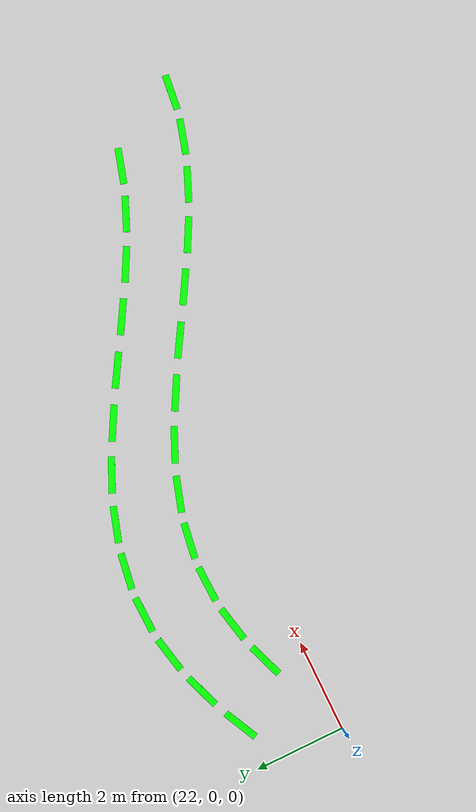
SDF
<sdf version="1.6">
 <world name="curved_lane_world">
  <include><uri>model://sun</uri></include>
  <include><uri>model://ground_plane</uri></include>
  <model name="lane_seg_23_right">
   <static>true</static>
   <pose>23.00 1.91 0 0 0 0.46</pose>
   <link name="lane_link_23_right">
    <visual name="segment">
     <pose>0 0 0.02 0 0 0</pose>
     <geometry><box><size>0.8 0.15 0.01</size></box></geometry>
     <material><ambient>0 1 0 1</ambient><diffuse>0 1 0 1</diffuse></material>
    </visual>
   </link>
  </model>
  <model name="lane_seg_24_left">
   <static>true</static>
   <pose>24.00 0.84 0 0 0 0.35</pose>
   <link name="lane_link_24_left">
    <visual name="segment">
     <pose>0 0 0.02 0 0 0</pose>
     <geometry><box><size>0.8 0.15 0.01</size></box></geometry>
     <material><ambient>0 1 0 1</ambient><diffuse>0 1 0 1</diffuse></material>
    </visual>
   </link>
  </model>
  <model name="lane_seg_24_right">
   <static>true</static>
   <pose>24.00 2.34 0 0 0 0.35</pose>
   <link name="lane_link_24_right">
    <visual name="segment">
     <pose>0 0 0.02 0 0 0</pose>
     <geometry><box><size>0.8 0.15 0.01</size></box></geometry>
     <material><ambient>0 1 0 1</ambient><diffuse>0 1 0 1</diffuse></material>
    </visual>
   </link>
  </model>
  <model name="lane_seg_25_left">
   <static>true</static>
   <pose>25.00 1.13 0 0 0 0.21</pose>
   <link name="lane_link_25_left">
    <visual name="segment">
     <pose>0 0 0.02 0 0 0</pose>
     <geometry><box><size>0.8 0.15 0.01</size></box></geometry>
     <material><ambient>0 1 0 1</ambient><diffuse>0 1 0 1</diffuse></material>
    </visual>
   </link>
  </model>
  <model name="lane_seg_25_right">
   <static>true</static>
   <pose>25.00 2.63 0 0 0 0.21</pose>
   <link name="lane_link_25_right">
    <visual name="segment">
     <pose>0 0 0.02 0 0 0</pose>
     <geometry><box><size>0.8 0.15 0.01</size></box></geometry>
     <material><ambient>0 1 0 1</ambient><diffuse>0 1 0 1</diffuse></material>
    </visual>
   </link>
  </model>
  <model name="lane_seg_26_left">
   <static>true</static>
   <pose>26.00 1.25 0 0 0 0.03</pose>
   <link name="lane_link_26_left">
    <visual name="segment">
     <pose>0 0 0.02 0 0 0</pose>
     <geometry><box><size>0.8 0.15 0.01</size></box></geometry>
     <material><ambient>0 1 0 1</ambient><diffuse>0 1 0 1</diffuse></material>
    </visual>
   </link>
  </model>
  <model name="lane_seg_26_right">
   <static>true</static>
   <pose>26.00 2.75 0 0 0 0.03</pose>
   <link name="lane_link_26_right">
    <visual name="segment">
     <pose>0 0 0.02 0 0 0</pose>
     <geometry><box><size>0.8 0.15 0.01</size></box></geometry>
     <material><ambient>0 1 0 1</ambient><diffuse>0 1 0 1</diffuse></material>
    </visual>
   </link>
  </model>
  <model name="lane_seg_27_left">
   <static>true</static>
   <pose>27.00 1.19 0 0 0 -0.15</pose>
   <link name="lane_link_27_left">
    <visual name="segment">
     <pose>0 0 0.02 0 0 0</pose>
     <geometry><box><size>0.8 0.15 0.01</size></box></geometry>
     <material><ambient>0 1 0 1</ambient><diffuse>0 1 0 1</diffuse></material>
    </visual>
   </link>
  </model>
  <model name="lane_seg_27_right">
   <static>true</static>
   <pose>27.00 2.69 0 0 0 -0.15</pose>
   <link name="lane_link_27_right">
    <visual name="segment">
     <pose>0 0 0.02 0 0 0</pose>
     <geometry><box><size>0.8 0.15 0.01</size></box></geometry>
     <material><ambient>0 1 0 1</ambient><diffuse>0 1 0 1</diffuse></material>
    </visual>
   </link>
  </model>
  <model name="lane_seg_28_left">
   <static>true</static>
   <pose>28.00 0.96 0 0 0 -0.30</pose>
   <link name="lane_link_28_left">
    <visual name="segment">
     <pose>0 0 0.02 0 0 0</pose>
     <geometry><box><size>0.8 0.15 0.01</size></box></geometry>
     <material><ambient>0 1 0 1</ambient><diffuse>0 1 0 1</diffuse></material>
    </visual>
   </link>
  </model>
  <model name="lane_seg_28_right">
   <static>true</static>
   <pose>28.00 2.46 0 0 0 -0.30</pose>
   <link name="lane_link_28_right">
    <visual name="segment">
     <pose>0 0 0.02 0 0 0</pose>
     <geometry><box><size>0.8 0.15 0.01</size></box></geometry>
     <material><ambient>0 1 0 1</ambient><diffuse>0 1 0 1</diffuse></material>
    </visual>
   </link>
  </model>
  <model name="lane_seg_29_left">
   <static>true</static>
   <pose>29.00 0.58 0 0 0 -0.42</pose>
   <link name="lane_link_29_left">
    <visual name="segment">
     <pose>0 0 0.02 0 0 0</pose>
     <geometry><box><size>0.8 0.15 0.01</size></box></geometry>
     <material><ambient>0 1 0 1</ambient><diffuse>0 1 0 1</diffuse></material>
    </visual>
   </link>
  </model>
  <model name="lane_seg_29_right">
   <static>true</static>
   <pose>29.00 2.08 0 0 0 -0.42</pose>
   <link name="lane_link_29_right">
    <visual name="segment">
     <pose>0 0 0.02 0 0 0</pose>
     <geometry><box><size>0.8 0.15 0.01</size></box></geometry>
     <material><ambient>0 1 0 1</ambient><diffuse>0 1 0 1</diffuse></material>
    </visual>
   </link>
  </model>
  <model name="lane_seg_30_left">
   <static>true</static>
   <pose>30.00 0.07 0 0 0 -0.50</pose>
   <link name="lane_link_30_left">
    <visual name="segment">
     <pose>0 0 0.02 0 0 0</pose>
     <geometry><box><size>0.8 0.15 0.01</size></box></geometry>
     <material><ambient>0 1 0 1</ambient><diffuse>0 1 0 1</diffuse></material>
    </visual>
   </link>
  </model>
  <model name="lane_seg_30_right">
   <static>true</static>
   <pose>30.00 1.57 0 0 0 -0.50</pose>
   <link name="lane_link_30_right">
    <visual name="segment">
     <pose>0 0 0.02 0 0 0</pose>
     <geometry><box><size>0.8 0.15 0.01</size></box></geometry>
     <material><ambient>0 1 0 1</ambient><diffuse>0 1 0 1</diffuse></material>
    </visual>
   </link>
  </model>
  <model name="lane_seg_31_left">
   <static>true</static>
   <pose>31.00 -0.50 0 0 0 -0.54</pose>
   <link name="lane_link_31_left">
    <visual name="segment">
     <pose>0 0 0.02 0 0 0</pose>
     <geometry><box><size>0.8 0.15 0.01</size></box></geometry>
     <material><ambient>0 1 0 1</ambient><diffuse>0 1 0 1</diffuse></material>
    </visual>
   </link>
  </model>
  <model name="lane_seg_31_right">
   <static>true</static>
   <pose>31.00 1.00 0 0 0 -0.54</pose>
   <link name="lane_link_31_right">
    <visual name="segment">
     <pose>0 0 0.02 0 0 0</pose>
     <geometry><box><size>0.8 0.15 0.01</size></box></geometry>
     <material><ambient>0 1 0 1</ambient><diffuse>0 1 0 1</diffuse></material>
    </visual>
   </link>
  </model>
  <model name="lane_seg_32_left">
   <static>true</static>
   <pose>32.00 -1.10 0 0 0 -0.53</pose>
   <link name="lane_link_32_left">
    <visual name="segment">
     <pose>0 0 0.02 0 0 0</pose>
     <geometry><box><size>0.8 0.15 0.01</size></box></geometry>
     <material><ambient>0 1 0 1</ambient><diffuse>0 1 0 1</diffuse></material>
    </visual>
   </link>
  </model>
  <model name="lane_seg_32_right">
   <static>true</static>
   <pose>32.00 0.40 0 0 0 -0.53</pose>
   <link name="lane_link_32_right">
    <visual name="segment">
     <pose>0 0 0.02 0 0 0</pose>
     <geometry><box><size>0.8 0.15 0.01</size></box></geometry>
     <material><ambient>0 1 0 1</ambient><diffuse>0 1 0 1</diffuse></material>
    </visual>
   </link>
  </model>
  <model name="lane_seg_33_left">
   <static>true</static>
   <pose>33.00 -1.67 0 0 0 -0.49</pose>
   <link name="lane_link_33_left">
    <visual name="segment">
     <pose>0 0 0.02 0 0 0</pose>
     <geometry><box><size>0.8 0.15 0.01</size></box></geometry>
     <material><ambient>0 1 0 1</ambient><diffuse>0 1 0 1</diffuse></material>
    </visual>
   </link>
  </model>
  <model name="lane_seg_33_right">
   <static>true</static>
   <pose>33.00 -0.17 0 0 0 -0.49</pose>
   <link name="lane_link_33_right">
    <visual name="segment">
     <pose>0 0 0.02 0 0 0</pose>
     <geometry><box><size>0.8 0.15 0.01</size></box></geometry>
     <material><ambient>0 1 0 1</ambient><diffuse>0 1 0 1</diffuse></material>
    </visual>
   </link>
  </model>
  <model name="lane_seg_34_left">
   <static>true</static>
   <pose>34.00 -2.15 0 0 0 -0.40</pose>
   <link name="lane_link_34_left">
    <visual name="segment">
     <pose>0 0 0.02 0 0 0</pose>
     <geometry><box><size>0.8 0.15 0.01</size></box></geometry>
     <material><ambient>0 1 0 1</ambient><diffuse>0 1 0 1</diffuse></material>
    </visual>
   </link>
  </model>
  <model name="lane_seg_34_right">
   <static>true</static>
   <pose>34.00 -0.65 0 0 0 -0.40</pose>
   <link name="lane_link_34_right">
    <visual name="segment">
     <pose>0 0 0.02 0 0 0</pose>
     <geometry><box><size>0.8 0.15 0.01</size></box></geometry>
     <material><ambient>0 1 0 1</ambient><diffuse>0 1 0 1</diffuse></material>
    </visual>
   </link>
  </model>
  <model name="lane_seg_35_left">
   <static>true</static>
   <pose>35.00 -2.51 0 0 0 -0.28</pose>
   <link name="lane_link_35_left">
    <visual name="segment">
     <pose>0 0 0.02 0 0 0</pose>
     <geometry><box><size>0.8 0.15 0.01</size></box></geometry>
     <material><ambient>0 1 0 1</ambient><diffuse>0 1 0 1</diffuse></material>
    </visual>
   </link>
  </model>
  <model name="lane_seg_35_right">
   <static>true</static>
   <pose>35.00 -1.01 0 0 0 -0.28</pose>
   <link name="lane_link_35_right">
    <visual name="segment">
     <pose>0 0 0.02 0 0 0</pose>
     <geometry><box><size>0.8 0.15 0.01</size></box></geometry>
     <material><ambient>0 1 0 1</ambient><diffuse>0 1 0 1</diffuse></material>
    </visual>
   </link>
  </model>
  <model name="lane_seg_36_left">
   <static>true</static>
   <pose>36.00 -2.71 0 0 0 -0.12</pose>
   <link name="lane_link_36_left">
    <visual name="segment">
     <pose>0 0 0.02 0 0 0</pose>
     <geometry><box><size>0.8 0.15 0.01</size></box></geometry>
     <material><ambient>0 1 0 1</ambient><diffuse>0 1 0 1</diffuse></material>
    </visual>
   </link>
  </model>
 </world>
</sdf>
